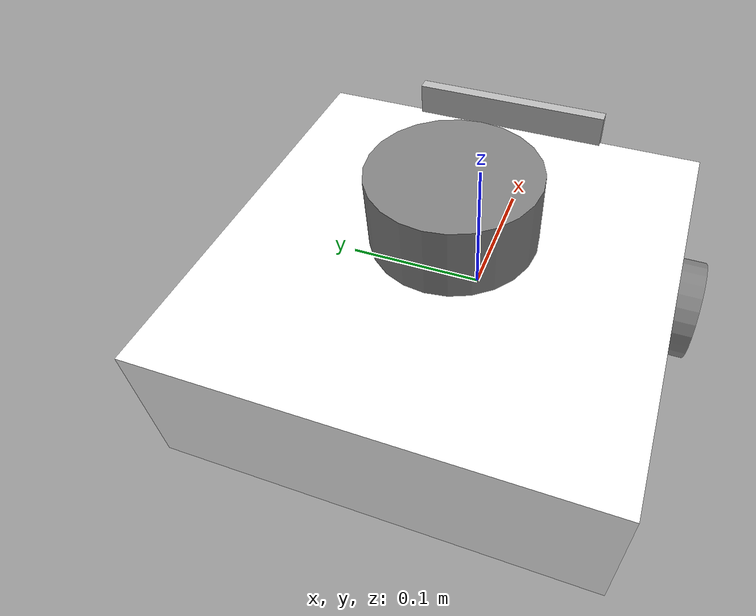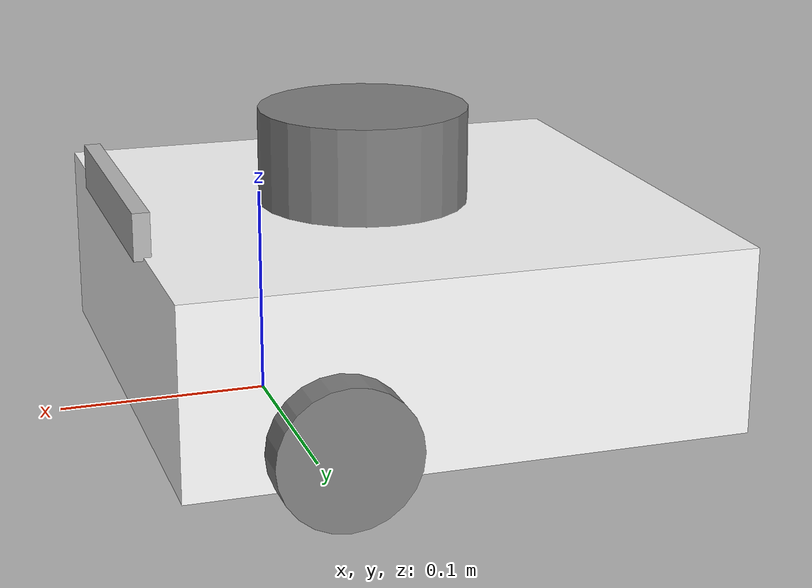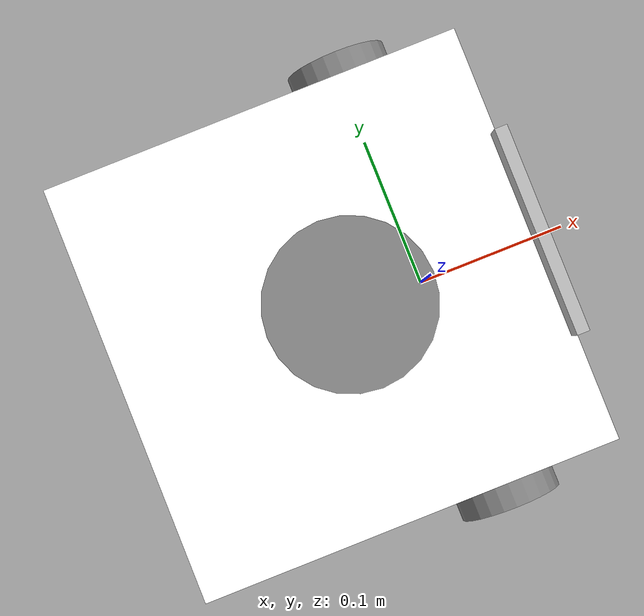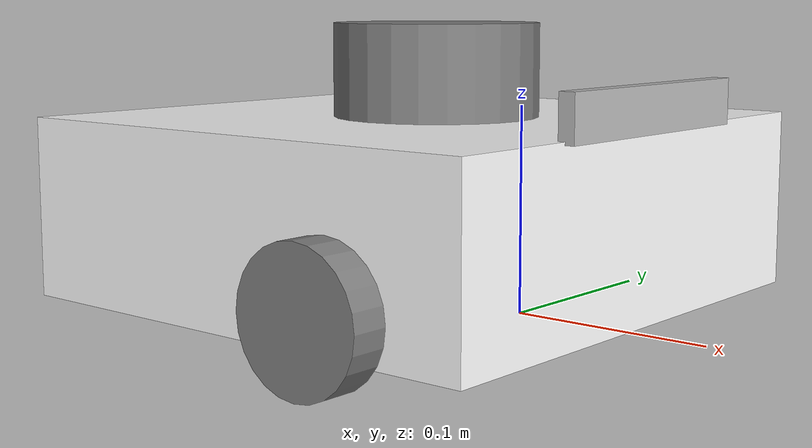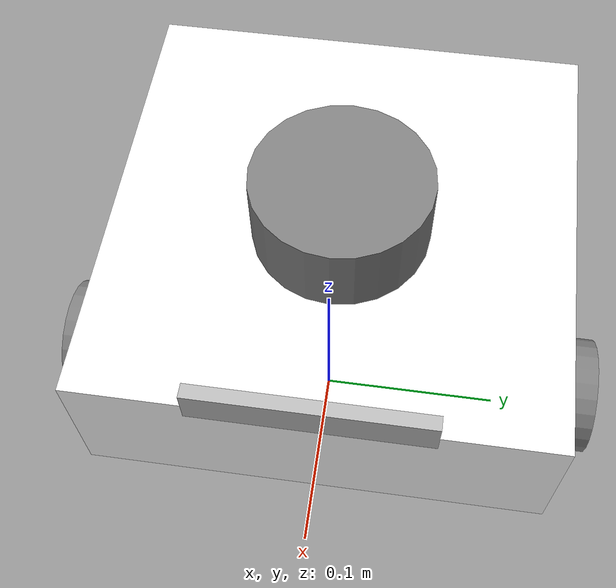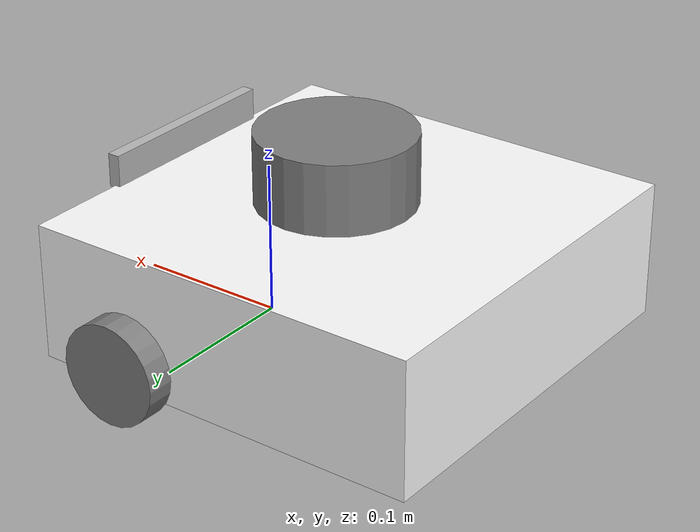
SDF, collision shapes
<?xml version="1.0"?>
<sdf version="1.10" xmlns:xacro="http://www.ros.org/wiki/xacro">
    <model name="turtlebot3_waffle_gps">
      <pose>0.0 0.0 0.0 0.0 0.0 0.0</pose>

      <link name="base_footprint"/>

      <link name="base_link">

        <inertial>
          <pose>-0.064 0 0.048 0 0 0</pose>
          <inertia>
            <ixx>0.001</ixx>
            <ixy>0.000</ixy>
            <ixz>0.000</ixz>
            <iyy>0.001</iyy>
            <iyz>0.000</iyz>
            <izz>0.001</izz>
          </inertia>
          <mass>1.0</mass>
        </inertial>

        <collision name="base_collision">
          <pose>-0.064 0 0.048 0 0 0</pose>
          <geometry>
            <box>
              <size>0.265 0.265 0.089</size>
            </box>
          </geometry>
        </collision>

        <visual name="base_visual">
          <pose>-0.064 0 0 0 0 0</pose>
          <geometry>
            <mesh>
              <uri>package://demo_tb3/models/turtlebot3_model/meshes/waffle_base.dae</uri>
              <scale>0.001 0.001 0.001</scale>
            </mesh>
          </geometry>
          <material>
            <diffuse>1 1 1</diffuse>
          </material>
        </visual>
      </link>

      <link name="imu_link">
        <sensor name="tb3_imu" type="imu">
          <always_on>true</always_on>
          <update_rate>200</update_rate>
          <topic>imu/data</topic>
          <frame_id>imu_link</frame_id>
          <imu>
            <angular_velocity>
              <x>
                <noise type="gaussian">
                  <mean>0.0</mean>
                  <stddev>2e-4</stddev>
                </noise>
              </x>
              <y>
                <noise type="gaussian">
                  <mean>0.0</mean>
                  <stddev>2e-4</stddev>
                </noise>
              </y>
              <z>
                <noise type="gaussian">
                  <mean>0.0</mean>
                  <stddev>2e-4</stddev>
                </noise>
              </z>
            </angular_velocity>
            <linear_acceleration>
              <x>
                <noise type="gaussian">
                  <mean>0.0</mean>
                  <stddev>1.7e-2</stddev>
                </noise>
              </x>
              <y>
                <noise type="gaussian">
                  <mean>0.0</mean>
                  <stddev>1.7e-2</stddev>
                </noise>
              </y>
              <z>
                <noise type="gaussian">
                  <mean>0.0</mean>
                  <stddev>1.7e-2</stddev>
                </noise>
              </z>
            </linear_acceleration>
          </imu>
        </sensor>
      </link>

      <link name="gps_link">
        <sensor name="navsat" type="navsat">
          <always_on>true</always_on>
          <update_rate>1</update_rate>
          <topic>gps/fix</topic>
          <frame_id>gps_link</frame_id>
          <navsat>
            <position_sensing>
              <horizontal>
              <!-- Be carefull setting this.
              Units in degree not in meters https://github.com/gazebosim/sdformat/issues/1572 -->
                <noise type="gaussian">
                  <mean>0.0</mean>
                  <stddev>0.0</stddev>
                </noise>
              </horizontal>
              <vertical>
                <noise type="gaussian">
                  <mean>0.0</mean>
                  <stddev>0.0</stddev>
                </noise>
              </vertical>
            </position_sensing>
          </navsat>
        </sensor>
      </link>

      <link name="base_scan">
        <inertial>
          <pose>-0.064 0 0.121 0 0 0</pose>
          <inertia>
            <ixx>0.001</ixx>
            <ixy>0.000</ixy>
            <ixz>0.000</ixz>
            <iyy>0.001</iyy>
            <iyz>0.000</iyz>
            <izz>0.001</izz>
          </inertia>
          <mass>0.125</mass>
        </inertial>

        <collision name="lidar_sensor_collision">
          <pose>-0.052 0 0.111 0 0 0</pose>
          <geometry>
            <cylinder>
              <radius>0.0508</radius>
              <length>0.055</length>
            </cylinder>
          </geometry>
        </collision>

        <visual name="lidar_sensor_visual">
          <pose>-0.064 0 0.121 0 0 0</pose>
          <geometry>
            <mesh>
              <uri>package://demo_tb3/models/turtlebot3_model/meshes/lds.dae</uri>
              <scale>0.001 0.001 0.001</scale>
            </mesh>
          </geometry>
          <material>
            <diffuse>0.5 0.5 0.5</diffuse>
          </material>
        </visual>

        <sensor name="hls_lfcd_lds" type="gpu_lidar">
          <always_on>true</always_on>
          <visualize>true</visualize>
          <pose>-0.064 0 0.15 0 0 0</pose>
          <update_rate>5</update_rate>
          <topic>scan</topic>
          <frame_id>base_scan</frame_id>
          <ray>
            <scan>
              <horizontal>
                <samples>360</samples>
                <resolution>1.000000</resolution>
                <min_angle>0.000000</min_angle>
                <max_angle>6.280000</max_angle>
              </horizontal>
            </scan>
            <range>
              <min>0.00001</min>
              <max>20.0</max>
              <resolution>0.015000</resolution>
            </range>
            <noise>
              <type>gaussian</type>
              <mean>0.0</mean>
              <stddev>0.01</stddev>
            </noise>
          </ray>
        </sensor>
      </link>

      <link name="wheel_left_link">

        <inertial>
          <pose>0.0 0.144 0.023 -1.57 0 0</pose>
          <inertia>
            <ixx>0.001</ixx>
            <ixy>0.000</ixy>
            <ixz>0.000</ixz>
            <iyy>0.001</iyy>
            <iyz>0.000</iyz>
            <izz>0.001</izz>
          </inertia>
          <mass>0.1</mass>
        </inertial>

        <collision name="wheel_left_collision">
          <pose>0.0 0.144 0.023 -1.57 0 0</pose>
          <geometry>
            <cylinder>
              <radius>0.033</radius>
              <length>0.018</length>
            </cylinder>
          </geometry>
          <surface>
            <friction>
              <ode>
                <mu>1</mu>
                <mu2>1</mu2>
                <slip1>0.035</slip1>
                <slip2>0</slip2>
                <fdir1>0 0 1</fdir1>
              </ode>
            </friction>
            <contact>
              <ode>
                <soft_cfm>0</soft_cfm>
                <soft_erp>0.2</soft_erp>
                <kp>1e+5</kp>
                <kd>1</kd>
                <max_vel>0.01</max_vel>
                <min_depth>0.001</min_depth>
              </ode>
            </contact>
          </surface>
        </collision>

        <visual name="wheel_left_visual">
          <pose>0.0 0.144 0.023 0 0 0</pose>
          <geometry>
            <mesh>
              <uri>package://demo_tb3/models/turtlebot3_model/meshes/tire.dae</uri>
              <scale>0.001 0.001 0.001</scale>
            </mesh>
          </geometry>
          <material>
            <diffuse>0.5 0.5 0.5</diffuse>
          </material>
        </visual>
      </link>

      <link name="wheel_right_link">

        <inertial>
          <pose>0.0 -0.144 0.023 -1.57 0 0</pose>
          <inertia>
            <ixx>0.001</ixx>
            <ixy>0.000</ixy>
            <ixz>0.000</ixz>
            <iyy>0.001</iyy>
            <iyz>0.000</iyz>
            <izz>0.001</izz>
          </inertia>
          <mass>0.1</mass>
        </inertial>

        <collision name="wheel_right_collision">
          <pose>0.0 -0.144 0.023 -1.57 0 0</pose>
          <geometry>
            <cylinder>
              <radius>0.033</radius>
              <length>0.018</length>
            </cylinder>
          </geometry>
          <surface>
            <friction>
              <ode>
                <mu>1</mu>
                <mu2>1</mu2>
                <slip1>0.035</slip1>
                <slip2>0</slip2>
                <fdir1>0 0 1</fdir1>
              </ode>
            </friction>
            <contact>
              <ode>
                <soft_cfm>0</soft_cfm>
                <soft_erp>0.2</soft_erp>
                <kp>1e+5</kp>
                <kd>1</kd>
                <max_vel>0.01</max_vel>
                <min_depth>0.001</min_depth>
              </ode>
            </contact>
          </surface>
        </collision>

        <visual name="wheel_right_visual">
          <pose>0.0 -0.144 0.023 0 0 0</pose>
          <geometry>
            <mesh>
              <uri>package://demo_tb3/models/turtlebot3_model/meshes/tire.dae</uri>
              <scale>0.001 0.001 0.001</scale>
            </mesh>
          </geometry>
          <material>
            <diffuse>0.5 0.5 0.5</diffuse>
          </material>
        </visual>
      </link>

      <link name='caster_back_right_link'>
        <pose>-0.177 -0.064 -0.004 -1.57 0 0</pose>
        <inertial>
          <mass>0.001</mass>
          <inertia>
            <ixx>0.00001</ixx>
            <ixy>0.000</ixy>
            <ixz>0.000</ixz>
            <iyy>0.00001</iyy>
            <iyz>0.000</iyz>
            <izz>0.00001</izz>
          </inertia>
        </inertial>
        <collision name='caster_back_right_collision'>
          <geometry>
            <sphere>
              <radius>0.0060000</radius>
            </sphere>
          </geometry>
          <surface>
            <contact>
              <ode>
                <soft_cfm>0</soft_cfm>
                <soft_erp>0.2</soft_erp>
                <kp>1e+5</kp>
                <kd>1</kd>
                <max_vel>0.01</max_vel>
                <min_depth>0.001</min_depth>
              </ode>
            </contact>
          </surface>
        </collision>

        <visual name="sphere_visual">
          <geometry>
            <sphere>
              <radius>0.0060000</radius>
            </sphere>
          </geometry>
          <material>
            <diffuse>0.5 0.5 0.5</diffuse>
          </material>
        </visual>
      </link>

      <link name='caster_back_left_link'>
        <pose>-0.177 0.064 -0.004 -1.57 0 0</pose>

        <inertial>
          <mass>0.001</mass>
          <inertia>
            <ixx>0.00001</ixx>
            <ixy>0.000</ixy>
            <ixz>0.000</ixz>
            <iyy>0.00001</iyy>
            <iyz>0.000</iyz>
            <izz>0.00001</izz>
          </inertia>
        </inertial>
        <collision name='caster_back_left_collision'>
          <geometry>
            <sphere>
              <radius>0.0060000</radius>
            </sphere>
          </geometry>
          <surface>
            <contact>
              <ode>
                <soft_cfm>0</soft_cfm>
                <soft_erp>0.2</soft_erp>
                <kp>1e+5</kp>
                <kd>1</kd>
                <max_vel>0.01</max_vel>
                <min_depth>0.001</min_depth>
              </ode>
            </contact>
          </surface>
        </collision>
       <visual name="sphere_visual">
          <geometry>
            <sphere>
              <radius>0.0060000</radius>
            </sphere>
          </geometry>
          <material>
            <diffuse>0.5 0.5 0.5</diffuse>
          </material>
        </visual>
      </link>

      <link name="camera_link">
        <inertial>
          <pose>0.069 -0.047 0.107 0 0 0</pose>
          <inertia>
            <ixx>0.001</ixx>
            <ixy>0.000</ixy>
            <ixz>0.000</ixz>
            <iyy>0.001</iyy>
            <iyz>0.000</iyz>
            <izz>0.001</izz>
          </inertia>
          <mass>0.035</mass>
        </inertial>
        <collision name="collision">
          <pose>0 0.047 -0.005 0 0 0</pose>
          <geometry>
            <box>
              <size>0.008 0.130 0.022</size>
            </box>
          </geometry>
        </collision>

        <pose>0.069 -0.047 0.107 0 0 0</pose>

        <sensor name="intel_realsense_r200_depth" type="depth">
          <always_on>1</always_on>
          <update_rate>5</update_rate>
          <pose>0.064 -0.047 0.107 0 0 0</pose>
          <frame_id>camera_depth_frame</frame_id>
          <camera name="realsense_depth_camera">
            <horizontal_fov>1.047</horizontal_fov>
            <image>
              <width>320</width>
              <height>240</height>
            </image>
            <lens>
              <projection>
                <!-- focal_length = fx = fy = width / ( 2 * tan (hfov / 2 ) ) -->
                <!-- tx = hackBaseline * focal_length -->
                <tx>19.4</tx>
              </projection>
            </lens>
            <depth_camera>
              <clip>
                <near>0.001</near>
                <far>5.0</far>
              </clip>
            </depth_camera>
          </camera>
        </sensor>
      </link>

      <joint name="base_joint" type="fixed">
        <parent>base_footprint</parent>
        <child>base_link</child>
        <pose>0.0 0.0 0.010 0 0 0</pose>
      </joint>

      <joint name="wheel_left_joint" type="revolute">
        <parent>base_link</parent>
        <child>wheel_left_link</child>
        <pose>0.0 0.144 0.023 -1.57 0 0</pose>
        <axis>
          <xyz>0 0 1</xyz>
        </axis>
      </joint>

      <joint name="wheel_right_joint" type="revolute">
        <parent>base_link</parent>
        <child>wheel_right_link</child>
        <pose>0.0 -0.144 0.023 -1.57 0 0</pose>
        <axis>
          <xyz>0 0 1</xyz>
        </axis>
      </joint>

      <joint name='caster_back_right_joint' type='ball'>
        <parent>base_link</parent>
        <child>caster_back_right_link</child>
      </joint>

      <joint name='caster_back_left_joint' type='ball'>
        <parent>base_link</parent>
        <child>caster_back_left_link</child>
      </joint>

      <joint name="lidar_joint" type="fixed">
        <parent>base_link</parent>
        <child>base_scan</child>
        <pose>-0.064 0 0.121 0 0 0</pose>
        <axis>
          <xyz>0 0 1</xyz>
        </axis>
      </joint>

      <joint name="camera_joint" type="fixed">
        <parent>base_link</parent>
        <child>camera_link</child>
        <pose>0.064 -0.065 0.094 0 0 0</pose>
        <axis>
          <xyz>0 0 1</xyz>
        </axis>
      </joint>

      <joint name="imu_joint" type="fixed">
        <parent>base_link</parent>
        <child>imu_link</child>
        <pose>0.0 0 0.068 0 0 0</pose>
      </joint>

      <joint name="gps_joint" type="fixed">
        <parent>base_link</parent>
        <child>gps_link</child>
        <pose>-0.05 0 0.05 0 0 0</pose>
      </joint>

      <plugin
        filename="gz-sim-diff-drive-system"
        name="gz::sim::systems::DiffDrive">

        <!-- wheel information -->
        <left_joint>wheel_left_joint</left_joint>
        <right_joint>wheel_right_joint</right_joint>
        <wheel_separation>0.287</wheel_separation>
        <wheel_radius>0.033</wheel_radius>

        <!-- limits -->
        <max_linear_acceleration>1</max_linear_acceleration>
        <min_linear_acceleration>-1</min_linear_acceleration>
        <max_angular_acceleration>2</max_angular_acceleration>
        <min_angular_acceleration>-2</min_angular_acceleration>
        <max_linear_velocity>0.46</max_linear_velocity>
        <min_linear_velocity>-0.46</min_linear_velocity>
        <max_angular_velocity>1.9</max_angular_velocity>
        <min_angular_velocity>-1.9</min_angular_velocity>

        <!-- input -->
        <topic>cmd_vel</topic>

        <!-- output -->
        <odom_topic>odom</odom_topic>
        <tf_topic>tf</tf_topic>
        <frame_id>odom</frame_id>
        <child_frame_id>base_footprint</child_frame_id>
        <odom_publish_frequency>30</odom_publish_frequency>

      </plugin>

      <plugin
        filename="gz-sim-joint-state-publisher-system"
        name="gz::sim::systems::JointStatePublisher">
        <joint_name>wheel_left_joint</joint_name>
        <joint_name>wheel_right_joint</joint_name>
        <topic>joint_states</topic>
        <update_rate>30</update_rate>
      </plugin>

    </model>
</sdf>
